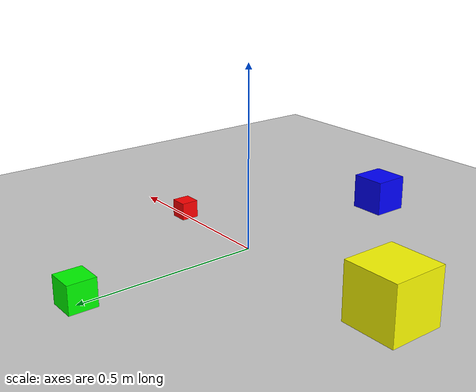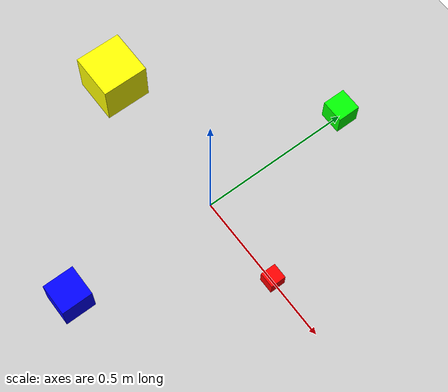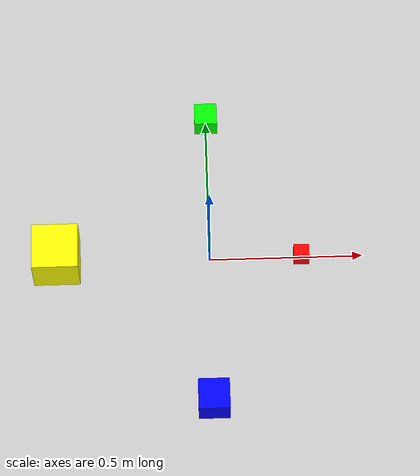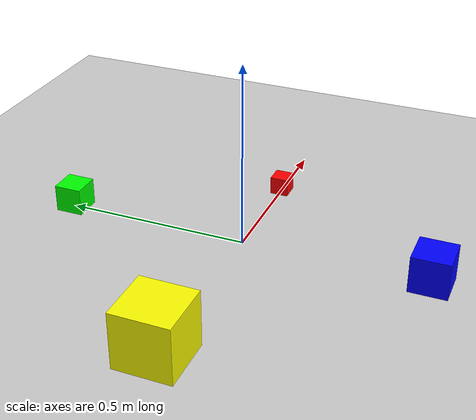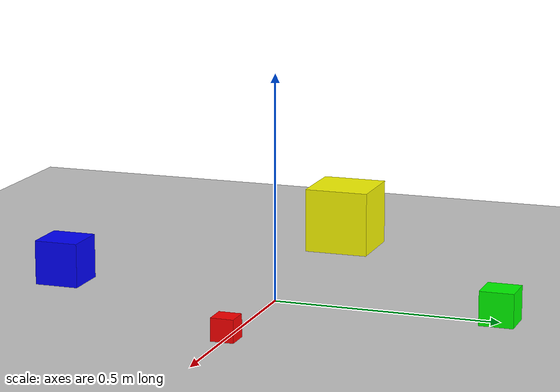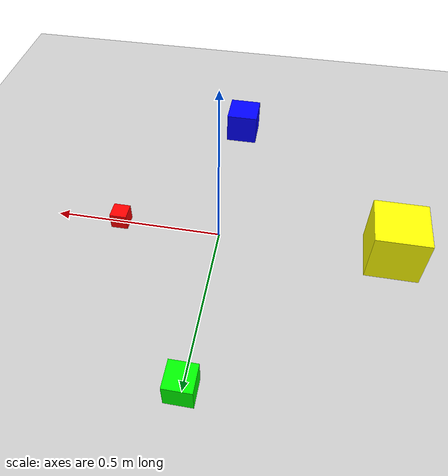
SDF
<?xml version="1.0" ?>
<sdf version="1.6">
  <world name="default">
    <physics name="1ms" type="ignored">
      <max_step_size>0.001</max_step_size>
      <real_time_factor>1.0</real_time_factor>
    </physics>
    <plugin
      filename="gz-sim-physics-system"
      name="gz::sim::systems::Physics">
    </plugin>
    <plugin
      filename="gz-sim-user-commands-system"
      name="gz::sim::systems::UserCommands">
    </plugin>
    <plugin
      filename="gz-sim-scene-broadcaster-system"
      name="gz::sim::systems::SceneBroadcaster">
    </plugin>

    <include>
      <uri>
        https://fuel.gazebosim.org/1.0/OpenRobotics/models/Sun
      </uri>
    </include>

    <include>
      <uri>
        https://fuel.gazebosim.org/1.0/OpenRobotics/models/Ground%20Plane
      </uri>
    </include>

    <model name="red_cube">
      <include>
        <uri>model://cube_5cm_red</uri>
      </include>
      <pose>0.3 0 0.025 0 0 0</pose>
    </model>

    <model name="green_cube">
      <include>
        <uri>model://cube_7.5cm_green</uri>
      </include>
      <pose>0 0.5 0.0375 0 0 0</pose>
    </model>

    <model name="blue_cube">
      <include>
        <uri>model://cube_10cm_blue</uri>
      </include>
      <pose>0 -0.5 0.05 0 0 0</pose>
    </model>

    <model name="yellow_cube">
      <include>
        <uri>model://cube_15cm_yellow</uri>
      </include>
      <pose>-0.5 0 0.075 0 0 0</pose>
    </model>

  </world>
</sdf>

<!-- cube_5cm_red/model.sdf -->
<sdf version="1.6">
    <model name="cube_5cm_red">
      <link name="cube_red_link">
        <inertial>
          <inertia>
            <ixx>1</ixx>
            <ixy>0</ixy>
            <ixz>0</ixz>
            <iyy>1</iyy>
            <iyz>0</iyz>
            <izz>1</izz>
          </inertia>
          <mass>1.0</mass>
        </inertial>
        <collision name="cube_red_collision">
          <geometry>
            <box>
              <size>0.05 0.05 0.05</size>
            </box>
          </geometry>
        </collision>
        <visual name="cube_red_visual">
          <material>
            <ambient>1 0 0 1</ambient>
            <diffuse>1 0 0 1</diffuse>
            <specular>0 0 0 0</specular>
            <emissive>0 0 0 1</emissive>
          </material>
          <geometry>
            <box>
              <size>0.05 0.05 0.05</size>
            </box>
          </geometry>
        </visual>
      </link>
    </model>
</sdf>

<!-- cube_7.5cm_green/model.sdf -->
<sdf version="1.6">
    <model name="cube_7.5cm_green">
      <link name="cube_green_link">
        <inertial>
          <inertia>
            <ixx>1</ixx>
            <ixy>0</ixy>
            <ixz>0</ixz>
            <iyy>1</iyy>
            <iyz>0</iyz>
            <izz>1</izz>
          </inertia>
          <mass>1.0</mass>
        </inertial>
        <collision name="cube_green_collision">
          <geometry>
            <box>
              <size>0.075 0.075 0.075</size>
            </box>
          </geometry>
        </collision>
        <visual name="cube_green_visual">
          <material>
            <ambient>0 1 0 1</ambient>
            <diffuse>0 1 0 1</diffuse>
            <specular>0 0 0 0</specular>
            <emissive>0 0 0 1</emissive>
          </material>
          <geometry>
            <box>
              <size>0.075 0.075 0.075</size>
            </box>
          </geometry>
        </visual>
      </link>
    </model>
</sdf>

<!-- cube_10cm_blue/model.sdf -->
<sdf version="1.6">
    <model name="cube_10cm_blue">
      <link name="cube_blue_link">
        <inertial>
          <inertia>
            <ixx>1</ixx>
            <ixy>0</ixy>
            <ixz>0</ixz>
            <iyy>1</iyy>
            <iyz>0</iyz>
            <izz>1</izz>
          </inertia>
          <mass>1.0</mass>
        </inertial>
        <collision name="cube_blue_collision">
          <geometry>
            <box>
              <size>0.1 0.1 0.1</size>
            </box>
          </geometry>
        </collision>
        <visual name="cube_blue_visual">
          <material>
            <ambient>0 0 1 1</ambient>
            <diffuse>0 0 1 1</diffuse>
            <specular>0 0 0 0</specular>
            <emissive>0 0 0 1</emissive>
          </material>
          <geometry>
            <box>
              <size>0.1 0.1 0.1</size>
            </box>
          </geometry>
        </visual>
      </link>
    </model>
</sdf>

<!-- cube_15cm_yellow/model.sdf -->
<sdf version="1.6">
    <model name="cube_15cm_yellow">
      <link name="cube_yellow_link">
        <inertial>
          <inertia>
            <ixx>1</ixx>
            <ixy>0</ixy>
            <ixz>0</ixz>
            <iyy>1</iyy>
            <iyz>0</iyz>
            <izz>1</izz>
          </inertia>
          <mass>1.0</mass>
        </inertial>
        <collision name="cube_yellow_collision">
          <geometry>
            <box>
              <size>0.15 0.15 0.15</size>
            </box>
          </geometry>
        </collision>
        <visual name="cube_yellow_visual">
          <material>
            <ambient>1 1 0 1</ambient>
            <diffuse>1 1 0 1</diffuse>
            <specular>0 0 0 0</specular>
            <emissive>0 0 0 1</emissive>
          </material>
          <geometry>
            <box>
              <size>0.15 0.15 0.15</size>
            </box>
          </geometry>
        </visual>
      </link>
    </model>
</sdf>
